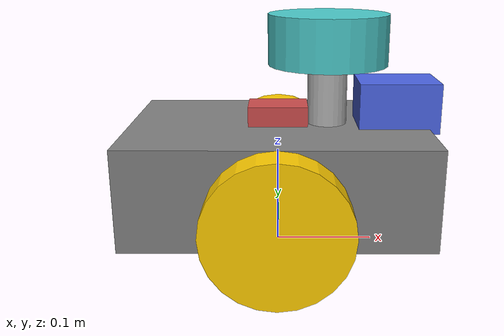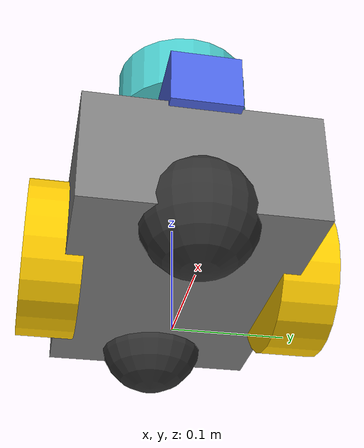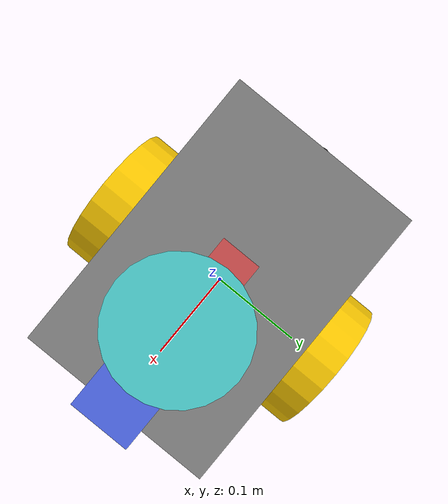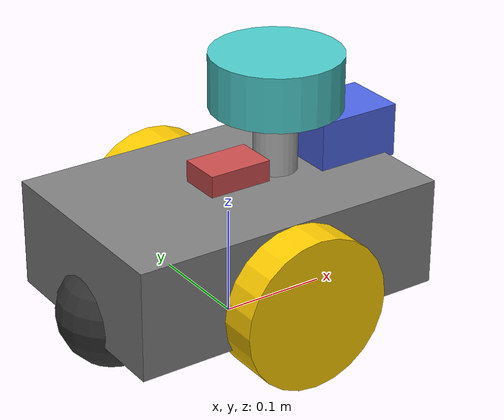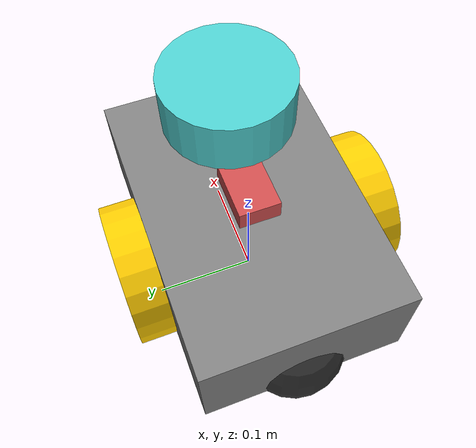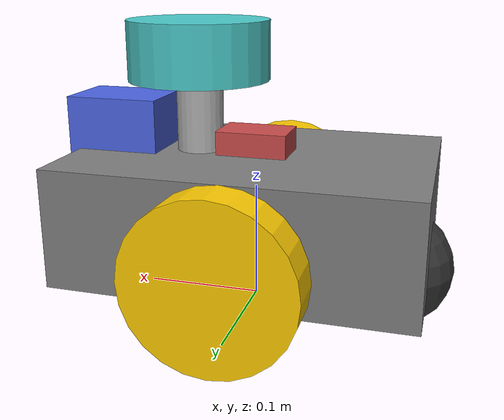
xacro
<?xml version="1.0"?>
<robot xmlns:xacro="http://www.ros.org/wiki/xacro" name="first_robot">
    <xacro:include filename="base.urdf.xacro" />
    <xacro:include filename="wheel.urdf.xacro" />
    <xacro:include filename="caster.urdf.xacro" />
    <xacro:include filename="imu.urdf.xacro" />
    <xacro:include filename="laser.urdf.xacro" />
    <xacro:include filename="camera.urdf.xacro" />
    <!-- chajian -->
    <xacro:include filename="$(find robot_description)/urdf/ros2_control.xacro" />

    <!-- 基座 -->
    <xacro:base_xacro />

    <!-- 左右轮 -->
    <xacro:wheel_xacro prefix="left" parent="base_link" x="0" y="0.11" z="-0.02" />
    <xacro:wheel_xacro prefix="right" parent="base_link" x="0" y="-0.11" z="-0.02" />

    <!-- 前后万向轮 -->
    <xacro:caster_xacro prefix="front" parent="base_link" x="0.12" y="0.0" z="-0.04" />
    <xacro:caster_xacro prefix="back" parent="base_link" x="-0.12" y="0.0" z="-0.04" />
    <!-- IMU -->
    <xacro:single_imu
        name="imu"
        parent="base_link"
        x="0.0" y="0.0" z="0.06"
        r="0" p="0" yaw="0" />

    <!-- 激光雷达 -->
    <xacro:laser_xacro
        prefix="laser"
        parent="base_link"
        x="0.05" y="0.0" z="0.08"
        r="0" p="0" yaw="0" />

    <!-- 相机 -->
    <xacro:camera_xacro
        prefix="camera"
        parent="base_link"
        x="0.12" y="0.0" z="0.07"
        r="0" p="0" yaw="0" />
    <xacro:ros2_control />
</robot>

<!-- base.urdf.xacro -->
<robot name="base_imu_robot" xmlns:xacro="http://ros.org/wiki/xacro">
    <xacro:macro name="base_xacro">

        <!-- 1. 唯一根节点：虚拟投影点，没有任何物理属性 -->
        <link name="base_footprint" />

        <!-- 2. 关节连接：footprint 在上面，base_link 在下面 -->
        <joint name="base_footprint_joint" type="fixed">
            <parent link="base_footprint" />
            <child link="base_link" />
            <!-- z 设为底盘半高（0.05），把底盘从地面抬起 -->
            <origin xyz="0 0 0.08" rpy="0 0 0" />
        </joint>

        <!-- 3. 真实底盘：挂在 base_footprint 上面 -->
        <link name="base_link">
            <visual>
                <origin xyz="0 0 0" rpy="0 0 0" />
                <geometry>
                    <box size="0.3 0.2 0.1" />
                </geometry>
                <material name="base_gray">
                    <color rgba="0.5 0.5 0.5 1" />
                </material>
            </visual>
            <collision>
                <origin xyz="0 0 0" rpy="0 0 0" />
                <geometry>
                    <box size="0.3 0.2 0.1" />
                </geometry>
            </collision>
            <inertial>
                <origin xyz="0 0 0" rpy="0 0 0" />
                <mass value="2.0" />
                <inertia ixx="0.00833" ixy="0" ixz="0" iyy="0.01083" iyz="0" izz="0.01300" />
            </inertial>
        </link>

        <!-- 4. Gazebo 专属颜色，防止显示为灰色 -->
        <gazebo reference="base_link">
            <material>Gazebo/Blue</material>
        </gazebo>

    </xacro:macro>
</robot>

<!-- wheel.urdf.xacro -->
<robot xmlns:xacro="http://www.ros.org/wiki/xacro">
    <xacro:macro name="wheel_xacro" params="prefix parent x y z">
        <link name="${prefix}_wheel_link">
            <visual>
                <!-- 修正：绕X轴转90度，让圆柱的轴心变成横向的Y轴 -->
                <origin xyz="0 0 0" rpy="1.5708 0 0" />
                <geometry>
                    <cylinder length="0.05" radius="0.07" />
                </geometry>
                <material name="wheel_yellow">
                    <color rgba="1.0 0.8 0.0 1" />
                </material>
            </visual>
            <collision>
                <origin xyz="0 0 0" rpy="1.5708 0 0" />
                <geometry>
                    <cylinder length="0.05" radius="0.07" />
                </geometry>
            </collision>
            <inertial>
                <origin xyz="0 0 0" rpy="1.5708 0 0" />
                <mass value="0.3" />
                <inertia ixx="0.0007875" ixy="0" ixz="0"
                    iyy="0.0007875" iyz="0"
                    izz="0.00147" />
            </inertial>
        </link>
        <gazebo reference="${prefix}_wheel_link">
            <material>Gazebo/Yellow</material>
            <!-- 加上摩擦力，防止原地打滑 -->
            <mu1>1.0</mu1>
            <mu2>1.0</mu2>
        </gazebo>
        <joint name="${prefix}_wheel_joint" type="continuous">
            <parent link="${parent}" />
            <child link="${prefix}_wheel_link" />
            <origin xyz="${x} ${y} ${z}" rpy="0 0 0" />
            <!-- 修正：旋转轴改为横向的Y轴 -->
            <axis xyz="0 1 0" />
            <!-- 加点阻尼，防止溜车 -->
            <dynamics damping="0.1" friction="0.1" />
        </joint>
    </xacro:macro>
</robot>

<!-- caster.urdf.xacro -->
<robot xmlns:xacro="http://www.ros.org/wiki/xacro">
    <xacro:macro name="caster_xacro" params="prefix parent x y z">
        <link name="${prefix}_caster_link">
            <visual>
                <origin xyz="0 0 0" rpy="0 0 0" />
                <geometry>
                    <sphere radius="0.05" />
                </geometry>
                <material name="caster_black">
                    <color rgba="0.2 0.2 0.2 1" />
                </material>
            </visual>
            <collision>
                <origin xyz="0 0 0" rpy="0 0 0" />
                <geometry>
                    <sphere radius="0.05" />
                </geometry>
            </collision>
            <inertial>
                <origin xyz="0 0 0" rpy="0 0 0" />
                <mass value="0.1" />
                <inertia ixx="0.0002" ixy="0" ixz="0"
                    iyy="0.0002" iyz="0"
                    izz="0.0002" />
            </inertial>
        </link>

        <!-- 关键修改：让这个球在 Gazebo 里极度光滑，充当纯滑动支撑 -->
        <gazebo reference="${prefix}_caster_link">
            <material>Gazebo/Black</material>
            <!-- 摩擦力设为 0，不然小车死活转不了弯 -->
            <mu1>0.0</mu1>
            <mu2>0.0</mu2>
        </gazebo>

        <joint name="${prefix}_caster_joint" type="fixed">
            <parent link="${parent}" />
            <child link="${prefix}_caster_link" />
            <origin xyz="${x} ${y} ${z}" rpy="0 0 0" />
        </joint>
    </xacro:macro>
</robot>

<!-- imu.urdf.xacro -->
<robot xmlns:xacro="http://www.ros.org/wiki/xacro">

    <xacro:macro name="single_imu" params="name parent x y z r p yaw">
        <link name="${name}_link">
            <visual>
                <origin xyz="0 0 0" rpy="0 0 0" />
                <geometry>
                    <box size="0.06 0.04 0.02" />
                </geometry>
                <material name="imu_red">
                    <color rgba="0.8 0.3 0.3 1" />
                </material>
            </visual>

            <collision>
                <origin xyz="0 0 0" rpy="0 0 0" />
                <geometry>
                    <box size="0.06 0.04 0.02" />
                </geometry>
            </collision>

            <inertial>
                <origin xyz="0 0 0" rpy="0 0 0" />
                <mass value="0.05" />
                <inertia ixx="0.000017" ixy="0" ixz="0"
                    iyy="0.000028" iyz="0"
                    izz="0.000032" />
            </inertial>
        </link>

        <joint name="${name}_joint" type="fixed">
            <parent link="${parent}" />
            <child link="${name}_link" />
            <origin xyz="${x} ${y} ${z}" rpy="${r} ${p} ${yaw}" />
        </joint>
    </xacro:macro>

</robot>

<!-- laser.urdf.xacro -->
<robot xmlns:xacro="http://www.ros.org/wiki/xacro">

    <xacro:macro name="laser_xacro" params="prefix parent x y z r p yaw">
        <!-- 第一部分：支撑立柱 -->
        <link name="${prefix}_cylinder_link">
            <visual>
                <origin xyz="0 0 0" rpy="0 0 0" />
                <geometry>
                    <cylinder length="0.06" radius="0.02" />
                </geometry>
                <material name="gray">
                    <color rgba="0.7 0.7 0.7 1.0" />
                </material>
            </visual>
            <collision>
                <origin xyz="0 0 0" rpy="0 0 0" />
                <geometry>
                    <cylinder length="0.06" radius="0.02" />
                </geometry>
            </collision>
            <inertial>
                <origin xyz="0 0 0" rpy="0 0 0" />
                <mass value="0.04" />
                <inertia ixx="0.000015" ixy="0" ixz="0"
                    iyy="0.000015" iyz="0"
                    izz="0.000025" />
            </inertial>
        </link>
        <joint name="${prefix}_cylinder_joint" type="fixed">
            <parent link="${parent}" />
            <child link="${prefix}_cylinder_link" />
            <origin xyz="${x} ${y} ${z}" rpy="${r} ${p} ${yaw}" />
        </joint>

        <!-- 第二部分：激光雷达本体，就是你刚才写的这个 -->
        <link name="${prefix}_link">
            <visual>
                <origin xyz="0 0 0" rpy="0 0 0" />
                <geometry>
                    <cylinder length="0.05" radius="0.06" />
                </geometry>
                <material name="laser_cyan">
                    <color rgba="0.3 0.8 0.8 1" />
                </material>
            </visual>
            <collision>
                <origin xyz="0 0 0" rpy="0 0 0" />
                <geometry>
                    <cylinder length="0.05" radius="0.06" />
                </geometry>
            </collision>
            <inertial>
                <origin xyz="0 0 0" rpy="0 0 0" />
                <mass value="0.1" />
                <inertia ixx="0.0000925" ixy="0" ixz="0"
                    iyy="0.0000925" iyz="0"
                    izz="0.00018" />
            </inertial>
        </link>
        <gazebo reference="${prefix}_link">
            <sensor type="ray" name="${prefix}_laser_sensor">
                <pose>0 0 0 0 0 0</pose>
                <visualize>false</visualize>
                <update_rate>10</update_rate>
                <ray>
                    <scan>
                        <horizontal>
                            <samples>720</samples>
                            <resolution>1</resolution>
                            <min_angle>-3.14159</min_angle>
                            <max_angle>3.14159</max_angle>
                        </horizontal>
                    </scan>
                    <range>
                        <min>0.12</min>
                        <max>10.0</max>
                        <resolution>0.01</resolution>
                    </range>
                    <noise>
                        <type>gaussian</type>
                        <mean>0.0</mean>
                        <stddev>0.01</stddev>
                    </noise>
                </ray>
                <plugin name="${prefix}_laser_plugin" filename="libgazebo_ros_ray_sensor.so">
                    <ros>
                        <namespace>/</namespace>
                        <remapping>~/out:=scan</remapping>
                    </ros>
                    <output_type>sensor_msgs/LaserScan</output_type>
                    <frame_name>${prefix}_link</frame_name>
                </plugin>
            </sensor>
        </gazebo>
        <!-- 雷达挂在立柱顶端，z向上挪一点 -->
        <joint name="${prefix}_laser_joint" type="fixed">
            <parent link="${prefix}_cylinder_link" />
            <child link="${prefix}_link" />
            <origin xyz="0 0 0.055" rpy="0 0 0" />
        </joint>
    </xacro:macro>

</robot>

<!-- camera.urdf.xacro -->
<robot xmlns:xacro="http://www.ros.org/wiki/xacro">

    <xacro:macro name="camera_xacro" params="prefix parent x y z r p yaw">
        <link name="${prefix}_camera_link">
            <visual>
                <origin xyz="0 0 0" rpy="0 0 0" />
                <geometry>
                    <box size="0.08 0.06 0.05" />
                </geometry>
                <material name="camera_blue">
                    <color rgba="0.3 0.4 0.9 1" />
                </material>
            </visual>

            <collision>
                <origin xyz="0 0 0" rpy="0 0 0" />
                <geometry>
                    <box size="0.08 0.06 0.05" />
                </geometry>
            </collision>

            <inertial>
                <origin xyz="0 0 0" rpy="0 0 0" />
                <mass value="0.05" />
                <inertia ixx="0.000042" ixy="0" ixz="0"
                    iyy="0.000057" iyz="0"
                    izz="0.000068" />
            </inertial>
        </link>
        <gazebo reference="${prefix}_camera_link">
            <material>Gazebo/Red</material>
        </gazebo>

        <!-- 2. 相机传感器与驱动插件 -->
        <gazebo reference="${prefix}_camera_link">
            <sensor name="camera_sensor" type="camera">
                <update_rate>30</update_rate> <!-- 帧率 30Hz -->
                <camera>
                    <horizontal_fov>1.047</horizontal_fov> <!-- 水平视场角约60度 -->
                    <image>
                        <width>640</width>   <!-- 图像宽度 -->
                        <height>480</height> <!-- 图像高度 -->
                        <format>R8G8B8</format>
                    </image>
                    <clip>
                        <near>0.1</near>   <!-- 近裁剪面（太近的物体不渲染） -->
                        <far>100</far>     <!-- 远裁剪面 -->
                    </clip>
                </camera>

                <!-- 加载 ROS 2 相机插件 -->
                <plugin name="camera_controller" filename="libgazebo_ros_camera.so">
                    <ros>
                        <namespace>/</namespace>
                        <!-- 话题重映射，方便统一管理 -->
                        <remapping>image_raw:=camera/image_raw</remapping>
                        <remapping>camera_info:=camera/camera_info</remapping>
                    </ros>

                    <alwaysOn>true</alwaysOn>
                    <updateRate>0.0</updateRate> <!-- 0 表示跟随 sensor 的 update_rate -->
                    <cameraName>camera</cameraName>

                    <!-- 话题名称 -->
                    <imageTopicName>image_raw</imageTopicName>
                    <cameraInfoTopicName>camera_info</cameraInfoTopicName>

                    <!-- 坐标系名称，必须与实际 link 名字一致 -->
                    <frameName>${prefix}_camera_link</frameName>
                </plugin>
            </sensor>
        </gazebo>
        <joint name="${prefix}_camera_joint" type="fixed">
            <parent link="${parent}" />
            <child link="${prefix}_camera_link" />
            <origin xyz="${x} ${y} ${z}" rpy="${r} ${p} ${yaw}" />
        </joint>
    </xacro:macro>

</robot>
